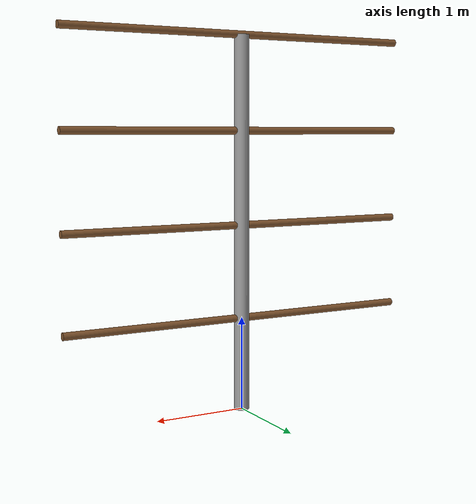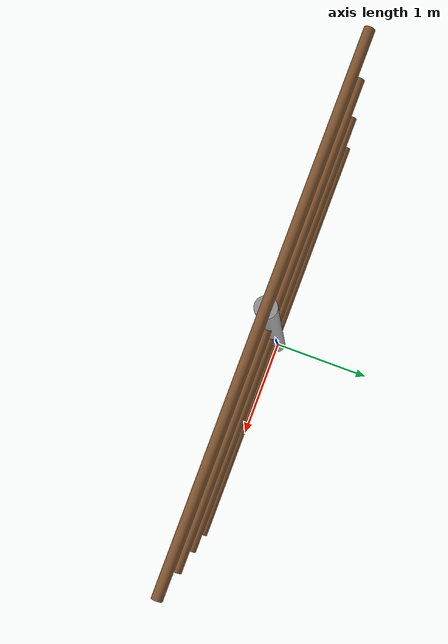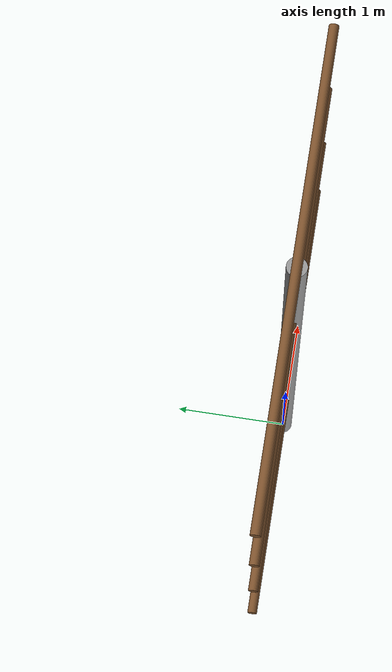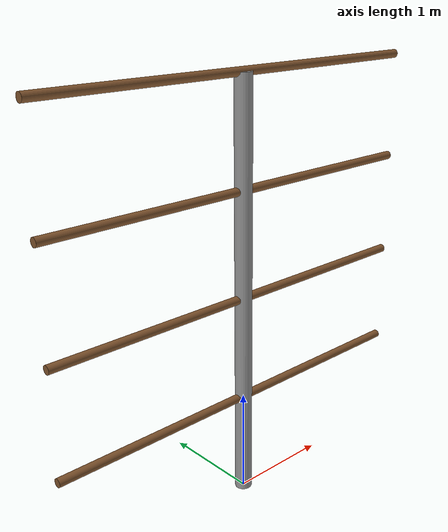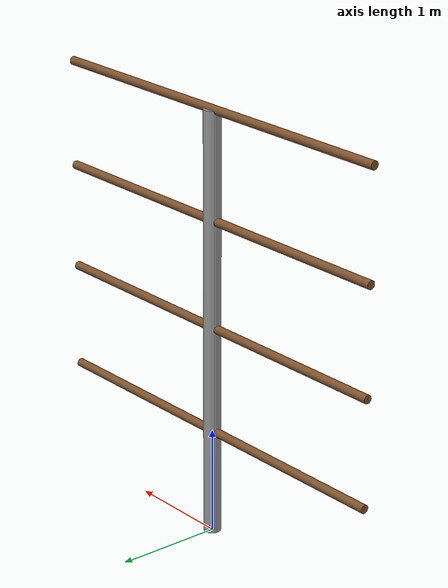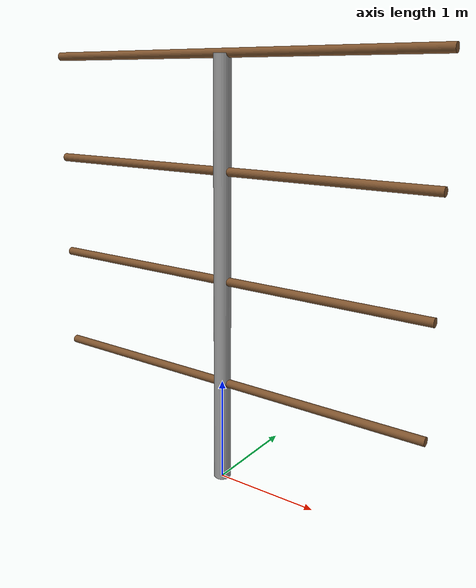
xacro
<?xml version="1.0"?>
<robot name="tree_structure" xmlns:xacro="http://www.ros.org/wiki/xacro">

  <!-- Parameters for branches -->
  <xacro:property name="horizontal_branch_spacing" value="1.0"/> <!-- Spacing between horizontal branches -->
  <!-- NOTE: despite the name, branch_diameter is used as the cylinder RADIUS below,
       so 0.04 gives 8 cm thick branches. -->
  <xacro:property name="branch_diameter" value="0.04"/>          <!-- Radius of the horizontal branches (see note) -->
  <xacro:property name="branch_length" value="4.0"/>              <!-- Length of the horizontal branches -->
  <xacro:property name="leader_branch_radius" value="0.08"/>      <!-- Radius of the leader branch -->
  <xacro:property name="leader_branch_length" value="4.0"/>       <!-- Length of the leader branch -->

  <!-- Leader branch -->
  <link name="leader_branch">
    <visual>
      <geometry>
        <cylinder length="${leader_branch_length}" radius="${leader_branch_radius}" />
      </geometry>
      <origin xyz="0 0 ${leader_branch_length/2}" rpy="0 0 0" />
      <material name="gray" />
    </visual>
    <collision>
      <geometry>
        <cylinder length="${leader_branch_length}" radius="${leader_branch_radius}" />
      </geometry>
      <origin xyz="0 0 ${leader_branch_length/2}" rpy="0 0 0" />
    </collision>
  </link>

  <!-- Macro to define horizontal branches -->
  <xacro:macro name="horizontal_branch" params="index z_position">
    <link name="horizontal_branch_${index}">
      <visual>
        <geometry>
          <cylinder length="${branch_length}" radius="${branch_diameter}" />
        </geometry>
        <origin xyz="0 0 0" rpy="0 1.5708 0" />
        <material name="brown" />
      </visual>
      <collision>
        <geometry>
          <cylinder length="${branch_length}" radius="${branch_diameter}" />
        </geometry>
        <origin xyz="0 0 0" rpy="0 1.5708 0" />
      </collision>
    </link>

    <!-- Joint to attach the branch to the leader branch -->
    <joint name="joint_branch_${index}" type="fixed">
      <parent link="leader_branch"/>
      <child link="horizontal_branch_${index}"/>
      <origin xyz="0 0 ${z_position}" rpy="0 0 0"/>
    </joint>
  </xacro:macro>

  <!-- Call the macro for each horizontal branch with calculated z positions -->
  <xacro:horizontal_branch index="1" z_position="${horizontal_branch_spacing * 1}"/>
  <xacro:horizontal_branch index="2" z_position="${horizontal_branch_spacing * 2}"/>
  <xacro:horizontal_branch index="3" z_position="${horizontal_branch_spacing * 3}"/>
  <xacro:horizontal_branch index="4" z_position="${horizontal_branch_spacing * 4}"/>

</robot>
